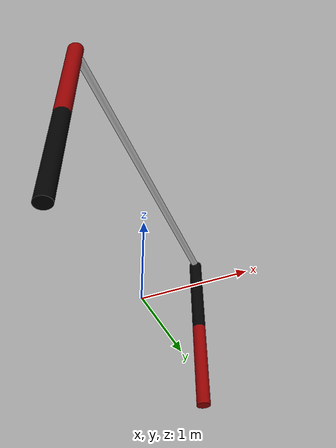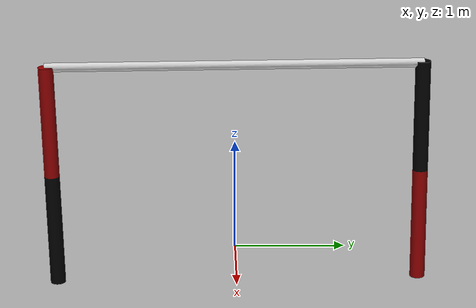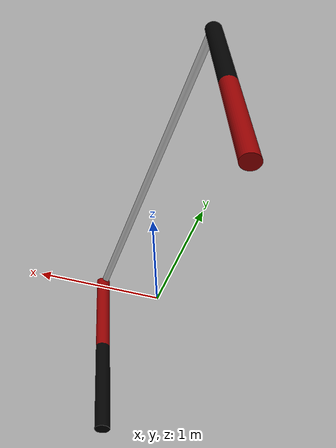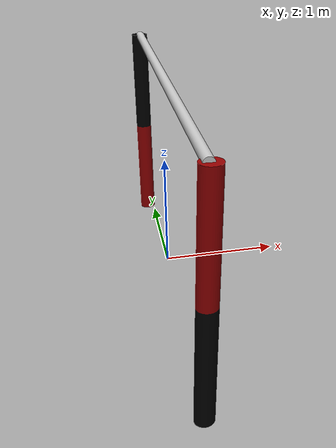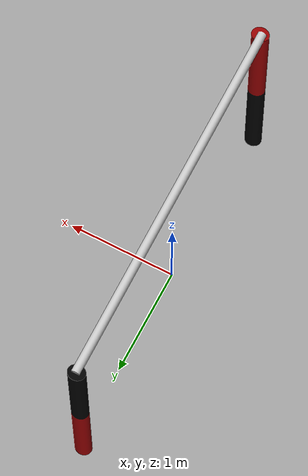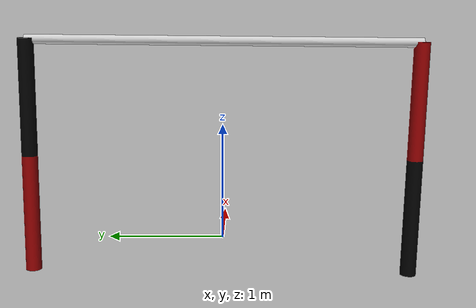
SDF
<?xml version="1.0" encoding="UTF-8"?>
<sdf version="1.6">
   <model name="gate">
      <static>true</static>
      <link name="base_link">
        <visual name="gate">
            <geometry>
               <mesh>
                  <uri>/home/eryk/Desktop/Cascade/simulation/models/gate.dae</uri>
               </mesh>
            </geometry>
        </visual>
      </link>
   </model>
    </sdf>
